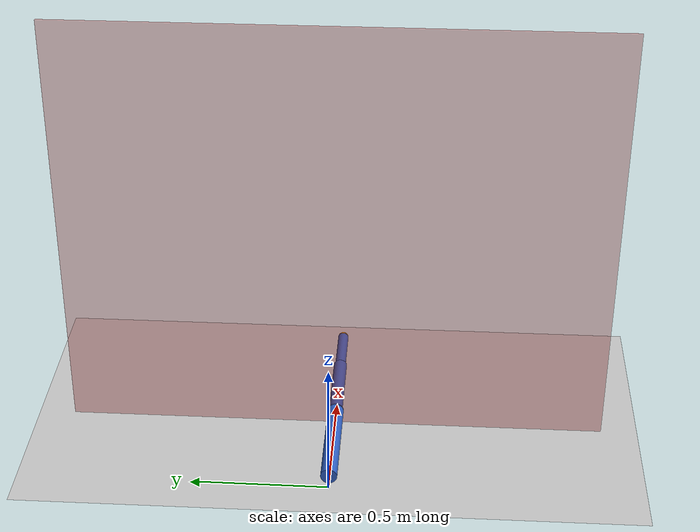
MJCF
<mujoco model="rrr_floor">
  <compiler angle="radian"/>

  <option timestep="0.001"/>

  <worldbody>
    <light diffuse=".6 .6 .6" pos="0 0 3" dir="0 0 -1"/>

    <!-- Floor at z=0 with explicit contact properties -->
    <geom name="floor" type="plane" size="2 2 0.1" pos="0 0 0" rgba="0.8 0.8 0.8 1"
          contype="1" conaffinity="1"
          friction="1.0 0.005 0.0001"
          solref="0.002 1" solimp="0.9 0.95 0.001"/>

    <geom name="wall" type="box" size="0.005 1.0 0.8" pos="0.4 0 0.8"
          rgba="0.75 0.2 0.2 0.35"
          contype="1" conaffinity="1"
          friction="1.0 0.005 0.0001"
          solref="0.002 1" solimp="0.9 0.95 0.001"/>

    <body name="base_link">
      <inertial pos="0 0 0" mass="1" diaginertia="0.001 0.001 0.001"/>
      <body name="link1" pos="0 0 0.05">
        <inertial pos="0.2 0 0" quat="0.5 0.5 0.5 0.5" mass="2" diaginertia="0.028 0.028 0.001"/>
        <joint name="joint1" pos="0 0 0" axis="0 1 0" range="-3.14159 3.14159" actuatorfrcrange="-50 50" damping="0.1"/>
        <geom size="0.03 0.2" pos="0.2 0 0" quat="0.707105 0 0.707108 0" type="cylinder" rgba="0.2 0.4 0.8 1"/>
        <body name="link2" pos="0.4 0 0">
          <inertial pos="0.15 0 0" quat="0.5 0.5 0.5 0.5" mass="1.5" diaginertia="0.012 0.012 0.001"/>
          <joint name="joint2" pos="0 0 0" axis="0 0 1" range="-3.14159 3.14159" actuatorfrcrange="-30 30" damping="0.1"/>
          <geom size="0.025 0.15" pos="0.15 0 0" quat="0.707105 0 0.707108 0" type="cylinder" rgba="0.2 0.4 0.8 1"/>
          <body name="link3" pos="0.3 0 0">
            <inertial pos="0.1 0 0" quat="0.5 0.5 0.5 0.5" mass="1" diaginertia="0.03 0.03 0.002"/>
            <joint name="joint3" pos="0 0 0" axis="0 0 1" range="-3.14159 3.14159" actuatorfrcrange="-20 20" damping="0.1"/>
            <geom size="0.02 0.1" pos="0.1 0 0" quat="0.707105 0 0.707108 0" type="cylinder" rgba="0.2 0.4 0.8 1"/>
            <body name="tip" pos="0.2 0 0">
              <geom name="tip_sphere" type="sphere" size="0.02" mass="0.001"
                    rgba="1 0.6 0 1"
                    contype="1" conaffinity="1"
                    friction="1.0 0.005 0.0001"
                    solref="0.002 1" solimp="0.9 0.95 0.001"/>
            </body>
          </body>
        </body>
      </body>
    </body>
  </worldbody>
</mujoco>
